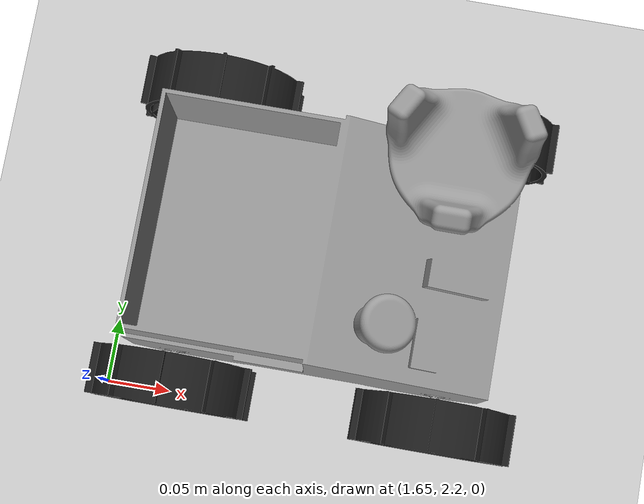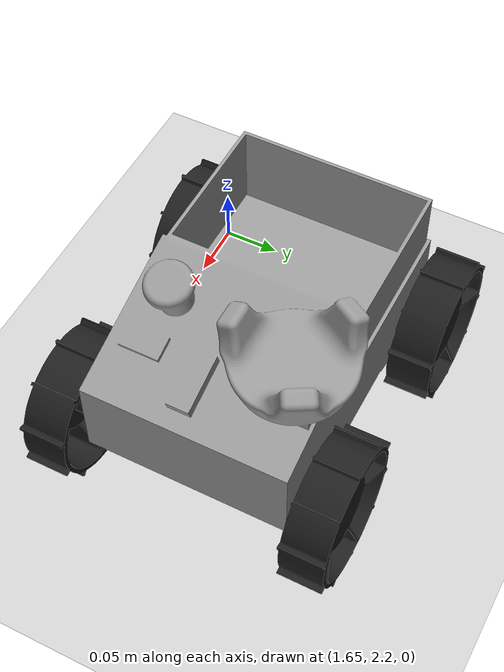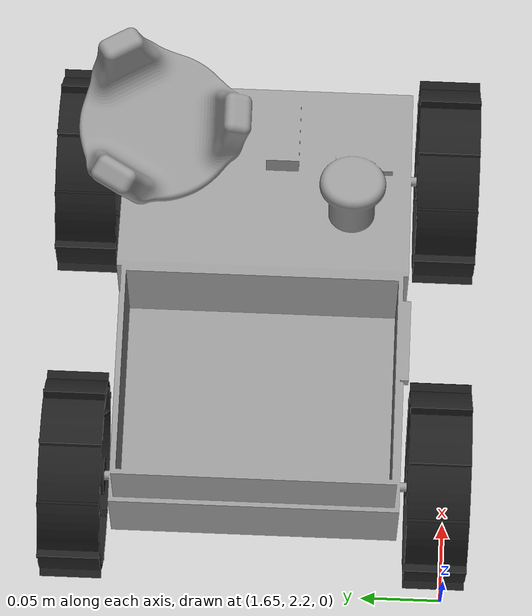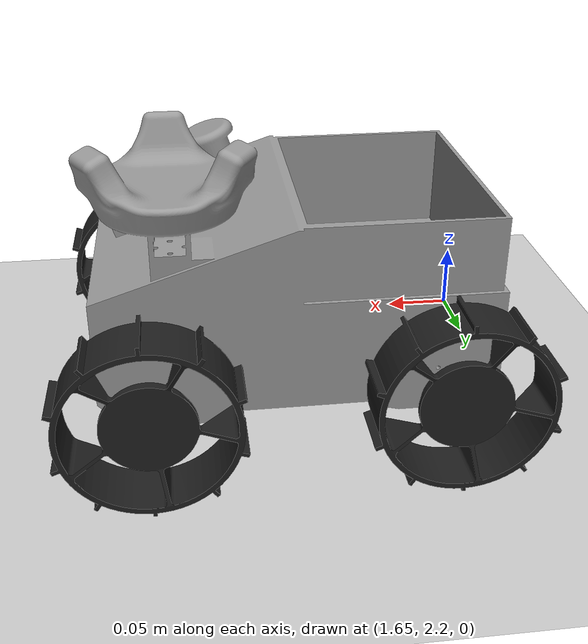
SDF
<sdf version="1.6">
 <world name="default">
  <model name="ground_plane">
   <static>1</static>
   <link name="link">
    <collision name="collision">
     <geometry><plane><normal>0 0 1</normal><size>100 100</size></plane></geometry>
     <surface><friction><ode><mu>100</mu><mu2>50</mu2></ode></friction></surface>
    </collision>
    <visual name="visual">
     <cast_shadows>0</cast_shadows>
     <geometry><plane><normal>0 0 1</normal><size>100 100</size></plane></geometry>
     <material>
      <script><uri>file://media/materials/scripts/gazebo.material</uri><name>Gazebo/Grey</name></script>
     </material>
    </visual>
   </link>
  </model>
  <model name="transporter_0">
   <link name="base_link">
    <pose>0 0.003 0.1576 0 -0 0</pose>
    <inertial>
     <mass>1</mass>
     <inertia>
      <ixx>0.166667</ixx>
      <ixy>0</ixy>
      <ixz>0</ixz>
      <iyy>0.166667</iyy>
      <iyz>0</iyz>
      <izz>0.166667</izz>
     </inertia>
    </inertial>
    <visual name="visual">
     <geometry>
      <mesh>
       <uri>/home/ssr/ros_kinetic/rmc_dev_ws/src/2018_robot/simulations/gazebo_rmc_sim/models/transporter/minibot_base_link.stl</uri>
       <scale>1 1 1</scale>
      </mesh>
     </geometry>
     <material>
      <lighting>1</lighting>
      <script><uri>file://media/materials/scripts/gazebo.material</uri><name>Gazebo/Grey</name></script>
      <ambient>0.3 0.3 0.3 1</ambient>
      <diffuse>0.7 0.7 0.7 1</diffuse>
      <specular>0.01 0.01 0.01 1</specular>
      <emissive>0 0 0 1</emissive>
      <shader type="vertex"><normal_map>__default__</normal_map></shader>
     </material>
    </visual>
    <collision name="collision_0">
     <geometry>
      <mesh>
       <uri>/home/ssr/ros_kinetic/rmc_dev_ws/src/2018_robot/simulations/gazebo_rmc_sim/models/transporter/minibot_frame_collision.stl</uri>
       <scale>1 1 1</scale>
      </mesh>
     </geometry>
     <surface>
      <friction>
       <ode><mu>1</mu><mu2>1</mu2><fdir1>0 0 0</fdir1><slip1>0</slip1><slip2>0</slip2></ode>
       <torsional>
        <coefficient>1</coefficient>
        <patch_radius>0</patch_radius>
        <surface_radius>0</surface_radius>
        <use_patch_radius>1</use_patch_radius>
        <ode><slip>0</slip></ode>
       </torsional>
      </friction>
      <bounce><restitution_coefficient>0</restitution_coefficient><threshold>1e+06</threshold></bounce>
      <contact>
       <collide_without_contact>0</collide_without_contact>
       <collide_without_contact_bitmask>1</collide_without_contact_bitmask>
       <collide_bitmask>1</collide_bitmask>
       <ode>
        <soft_cfm>0</soft_cfm>
        <soft_erp>0.2</soft_erp>
        <kp>1e+13</kp>
        <kd>1</kd>
        <max_vel>0.01</max_vel>
        <min_depth>0</min_depth>
       </ode>
       <bullet>
        <split_impulse>1</split_impulse>
        <split_impulse_penetration_threshold>-0.01</split_impulse_penetration_threshold>
        <soft_cfm>0</soft_cfm>
        <soft_erp>0.2</soft_erp>
        <kp>1e+13</kp>
        <kd>1</kd>
       </bullet>
      </contact>
     </surface>
    </collision>
   </link>
   <link name="back_left_wheel">
    <pose>-0.1 0.1205 0.085 0 0 -1.5708</pose>
    <inertial>
     <mass>1</mass>
     <inertia>
      <ixx>0.166667</ixx>
      <ixy>0</ixy>
      <ixz>0</ixz>
      <iyy>0.166667</iyy>
      <iyz>0</iyz>
      <izz>0.166667</izz>
     </inertia>
    </inertial>
    <visual name="visual">
     <geometry>
      <mesh>
       <uri>/home/ssr/ros_kinetic/rmc_dev_ws/src/2018_robot/simulations/gazebo_rmc_sim/models/transporter/minibot_wheel.stl</uri>
       <scale>1 1 1</scale>
      </mesh>
     </geometry>
     <material>
      <lighting>1</lighting>
      <script><uri>file://media/materials/scripts/gazebo.material</uri><name>Gazebo/Black</name></script>
      <ambient>0.3 0.3 0.3 1</ambient>
      <diffuse>0.7 0.7 0.7 1</diffuse>
      <specular>0.01 0.01 0.01 1</specular>
      <emissive>0 0 0 1</emissive>
      <shader type="vertex"><normal_map>__default__</normal_map></shader>
     </material>
    </visual>
    <collision name="collision_0">
     <pose>0.0085 0 0 3.14159 1.57079 3.14159</pose>
     <geometry><cylinder><radius>0.06</radius><length>0.037</length></cylinder></geometry>
     <surface>
      <friction>
       <ode><mu>1</mu><mu2>1</mu2><fdir1>0 0 0</fdir1><slip1>0</slip1><slip2>0</slip2></ode>
       <torsional>
        <coefficient>1</coefficient>
        <patch_radius>0</patch_radius>
        <surface_radius>0</surface_radius>
        <use_patch_radius>1</use_patch_radius>
        <ode><slip>0</slip></ode>
       </torsional>
      </friction>
      <bounce><restitution_coefficient>0</restitution_coefficient><threshold>1e+06</threshold></bounce>
      <contact>
       <collide_without_contact>0</collide_without_contact>
       <collide_without_contact_bitmask>1</collide_without_contact_bitmask>
       <collide_bitmask>1</collide_bitmask>
       <ode>
        <soft_cfm>0</soft_cfm>
        <soft_erp>0.2</soft_erp>
        <kp>1e+13</kp>
        <kd>1</kd>
        <max_vel>0.01</max_vel>
        <min_depth>0</min_depth>
       </ode>
       <bullet>
        <split_impulse>1</split_impulse>
        <split_impulse_penetration_threshold>-0.01</split_impulse_penetration_threshold>
        <soft_cfm>0</soft_cfm>
        <soft_erp>0.2</soft_erp>
        <kp>1e+13</kp>
        <kd>1</kd>
       </bullet>
      </contact>
     </surface>
    </collision>
   </link>
   <link name="front_left_wheel">
    <pose>0.1 0.1205 0.085 0 0 -1.5708</pose>
    <inertial>
     <mass>1</mass>
     <inertia>
      <ixx>0.166667</ixx>
      <ixy>0</ixy>
      <ixz>0</ixz>
      <iyy>0.166667</iyy>
      <iyz>0</iyz>
      <izz>0.166667</izz>
     </inertia>
    </inertial>
    <visual name="visual">
     <geometry>
      <mesh>
       <uri>/home/ssr/ros_kinetic/rmc_dev_ws/src/2018_robot/simulations/gazebo_rmc_sim/models/transporter/minibot_wheel.stl</uri>
       <scale>1 1 1</scale>
      </mesh>
     </geometry>
     <material>
      <lighting>1</lighting>
      <script><uri>file://media/materials/scripts/gazebo.material</uri><name>Gazebo/Black</name></script>
      <ambient>0.3 0.3 0.3 1</ambient>
      <diffuse>0.7 0.7 0.7 1</diffuse>
      <specular>0.01 0.01 0.01 1</specular>
      <emissive>0 0 0 1</emissive>
      <shader type="vertex"><normal_map>__default__</normal_map></shader>
     </material>
    </visual>
    <collision name="collision_0">
     <pose>0.0085 0 0 3.14159 1.57079 3.14159</pose>
     <geometry><cylinder><radius>0.06</radius><length>0.037</length></cylinder></geometry>
     <surface>
      <friction>
       <ode><mu>1</mu><mu2>1</mu2><fdir1>0 0 0</fdir1><slip1>0</slip1><slip2>0</slip2></ode>
       <torsional>
        <coefficient>1</coefficient>
        <patch_radius>0</patch_radius>
        <surface_radius>0</surface_radius>
        <use_patch_radius>1</use_patch_radius>
        <ode><slip>0</slip></ode>
       </torsional>
      </friction>
      <bounce><restitution_coefficient>0</restitution_coefficient><threshold>1e+06</threshold></bounce>
      <contact>
       <collide_without_contact>0</collide_without_contact>
       <collide_without_contact_bitmask>1</collide_without_contact_bitmask>
       <collide_bitmask>1</collide_bitmask>
       <ode>
        <soft_cfm>0</soft_cfm>
        <soft_erp>0.2</soft_erp>
        <kp>1e+13</kp>
        <kd>1</kd>
        <max_vel>0.01</max_vel>
        <min_depth>0</min_depth>
       </ode>
       <bullet>
        <split_impulse>1</split_impulse>
        <split_impulse_penetration_threshold>-0.01</split_impulse_penetration_threshold>
        <soft_cfm>0</soft_cfm>
        <soft_erp>0.2</soft_erp>
        <kp>1e+13</kp>
        <kd>1</kd>
       </bullet>
      </contact>
     </surface>
    </collision>
   </link>
   <link name="front_right_wheel">
    <pose>0.1 -0.122 0.085 0 -0 1.5708</pose>
    <inertial>
     <mass>1</mass>
     <inertia>
      <ixx>0.166667</ixx>
      <ixy>0</ixy>
      <ixz>0</ixz>
      <iyy>0.166667</iyy>
      <iyz>0</iyz>
      <izz>0.166667</izz>
     </inertia>
    </inertial>
    <visual name="visual">
     <geometry>
      <mesh>
       <uri>/home/ssr/ros_kinetic/rmc_dev_ws/src/2018_robot/simulations/gazebo_rmc_sim/models/transporter/minibot_wheel.stl</uri>
       <scale>1 1 1</scale>
      </mesh>
     </geometry>
     <material>
      <lighting>1</lighting>
      <script><uri>file://media/materials/scripts/gazebo.material</uri><name>Gazebo/Black</name></script>
      <ambient>0.3 0.3 0.3 1</ambient>
      <diffuse>0.7 0.7 0.7 1</diffuse>
      <specular>0.01 0.01 0.01 1</specular>
      <emissive>0 0 0 1</emissive>
      <shader type="vertex"><normal_map>__default__</normal_map></shader>
     </material>
    </visual>
    <collision name="collision_0">
     <pose>0.0085 0 0 3.14159 1.57079 3.14159</pose>
     <geometry><cylinder><radius>0.06</radius><length>0.037</length></cylinder></geometry>
     <surface>
      <friction>
       <ode><mu>1</mu><mu2>1</mu2><fdir1>0 0 0</fdir1><slip1>0</slip1><slip2>0</slip2></ode>
       <torsional>
        <coefficient>1</coefficient>
        <patch_radius>0</patch_radius>
        <surface_radius>0</surface_radius>
        <use_patch_radius>1</use_patch_radius>
        <ode><slip>0</slip></ode>
       </torsional>
      </friction>
      <bounce><restitution_coefficient>0</restitution_coefficient><threshold>1e+06</threshold></bounce>
      <contact>
       <collide_without_contact>0</collide_without_contact>
       <collide_without_contact_bitmask>1</collide_without_contact_bitmask>
       <collide_bitmask>1</collide_bitmask>
       <ode>
        <soft_cfm>0</soft_cfm>
        <soft_erp>0.2</soft_erp>
        <kp>1e+13</kp>
        <kd>1</kd>
        <max_vel>0.01</max_vel>
        <min_depth>0</min_depth>
       </ode>
       <bullet>
        <split_impulse>1</split_impulse>
        <split_impulse_penetration_threshold>-0.01</split_impulse_penetration_threshold>
        <soft_cfm>0</soft_cfm>
        <soft_erp>0.2</soft_erp>
        <kp>1e+13</kp>
        <kd>1</kd>
       </bullet>
      </contact>
     </surface>
    </collision>
   </link>
   <link name="back_right_wheel">
    <pose>-0.1 -0.122 0.085 0 -0 1.5708</pose>
    <inertial>
     <mass>1</mass>
     <inertia>
      <ixx>0.166667</ixx>
      <ixy>0</ixy>
      <ixz>0</ixz>
      <iyy>0.166667</iyy>
      <iyz>0</iyz>
      <izz>0.166667</izz>
     </inertia>
    </inertial>
    <visual name="visual">
     <geometry>
      <mesh>
       <uri>/home/ssr/ros_kinetic/rmc_dev_ws/src/2018_robot/simulations/gazebo_rmc_sim/models/transporter/minibot_wheel.stl</uri>
       <scale>1 1 1</scale>
      </mesh>
     </geometry>
     <material>
      <lighting>1</lighting>
      <script><uri>file://media/materials/scripts/gazebo.material</uri><name>Gazebo/Black</name></script>
      <ambient>0.3 0.3 0.3 1</ambient>
      <diffuse>0.7 0.7 0.7 1</diffuse>
      <specular>0.01 0.01 0.01 1</specular>
      <emissive>0 0 0 1</emissive>
      <shader type="vertex"><normal_map>__default__</normal_map></shader>
     </material>
    </visual>
    <collision name="collision_0">
     <pose>0.0085 0 0 3.14159 1.57079 3.14159</pose>
     <geometry><cylinder><radius>0.06</radius><length>0.037</length></cylinder></geometry>
     <surface>
      <friction>
       <ode><mu>1</mu><mu2>1</mu2><fdir1>0 0 0</fdir1><slip1>0</slip1><slip2>0</slip2></ode>
       <torsional>
        <coefficient>1</coefficient>
        <patch_radius>0</patch_radius>
        <surface_radius>0</surface_radius>
        <use_patch_radius>1</use_patch_radius>
        <ode><slip>0</slip></ode>
       </torsional>
      </friction>
      <bounce><restitution_coefficient>0</restitution_coefficient><threshold>1e+06</threshold></bounce>
      <contact>
       <collide_without_contact>0</collide_without_contact>
       <collide_without_contact_bitmask>1</collide_without_contact_bitmask>
       <collide_bitmask>1</collide_bitmask>
       <ode>
        <soft_cfm>0</soft_cfm>
        <soft_erp>0.2</soft_erp>
        <kp>1e+13</kp>
        <kd>1</kd>
        <max_vel>0.01</max_vel>
        <min_depth>0</min_depth>
       </ode>
       <bullet>
        <split_impulse>1</split_impulse>
        <split_impulse_penetration_threshold>-0.01</split_impulse_penetration_threshold>
        <soft_cfm>0</soft_cfm>
        <soft_erp>0.2</soft_erp>
        <kp>1e+13</kp>
        <kd>1</kd>
       </bullet>
      </contact>
     </surface>
    </collision>
   </link>
   <joint name="BL_Wheel" type="revolute">
    <parent>base_link</parent>
    <child>back_left_wheel</child>
    <axis>
     <xyz>1 0 0</xyz>
     <use_parent_model_frame>0</use_parent_model_frame>
     <limit>
      <lower>-1.79769e+308</lower>
      <upper>1.79769e+308</upper>
      <effort>-1</effort>
      <velocity>1</velocity>
     </limit>
     <dynamics>
      <spring_reference>0</spring_reference>
      <spring_stiffness>0</spring_stiffness>
      <damping>10</damping>
      <friction>1</friction>
     </dynamics>
    </axis>
    <physics>
     <ode><limit><cfm>0</cfm><erp>0.2</erp></limit><suspension><cfm>0</cfm><erp>0.2</erp></suspension></ode>
    </physics>
   </joint>
   <joint name="FL_Wheel" type="revolute">
    <parent>base_link</parent>
    <child>front_left_wheel</child>
    <axis>
     <xyz>1 0 0</xyz>
     <use_parent_model_frame>0</use_parent_model_frame>
     <limit>
      <lower>-1.79769e+308</lower>
      <upper>1.79769e+308</upper>
      <effort>-1</effort>
      <velocity>1</velocity>
     </limit>
     <dynamics>
      <spring_reference>0</spring_reference>
      <spring_stiffness>0</spring_stiffness>
      <damping>10</damping>
      <friction>1</friction>
     </dynamics>
    </axis>
    <physics>
     <ode><limit><cfm>0</cfm><erp>0.2</erp></limit><suspension><cfm>0</cfm><erp>0.2</erp></suspension></ode>
    </physics>
   </joint>
   <joint name="BR_Wheel" type="revolute">
    <parent>base_link</parent>
    <child>back_right_wheel</child>
    <axis>
     <xyz>1 0 0</xyz>
     <use_parent_model_frame>0</use_parent_model_frame>
     <limit>
      <lower>-1.79769e+308</lower>
      <upper>1.79769e+308</upper>
      <effort>-1</effort>
      <velocity>1</velocity>
     </limit>
     <dynamics>
      <spring_reference>0</spring_reference>
      <spring_stiffness>0</spring_stiffness>
      <damping>10</damping>
      <friction>1</friction>
     </dynamics>
    </axis>
    <physics>
     <ode><limit><cfm>0</cfm><erp>0.2</erp></limit><suspension><cfm>0</cfm><erp>0.2</erp></suspension></ode>
    </physics>
   </joint>
   <joint name="FR_Wheel" type="revolute">
    <parent>base_link</parent>
    <child>front_right_wheel</child>
    <axis>
     <xyz>1 0 0</xyz>
     <use_parent_model_frame>0</use_parent_model_frame>
     <limit>
      <lower>-1.79769e+308</lower>
      <upper>1.79769e+308</upper>
      <effort>-1</effort>
      <velocity>1</velocity>
     </limit>
     <dynamics>
      <spring_reference>0</spring_reference>
      <spring_stiffness>0</spring_stiffness>
      <damping>10</damping>
      <friction>1</friction>
     </dynamics>
    </axis>
    <physics>
     <ode><limit><cfm>0</cfm><erp>0.2</erp></limit><suspension><cfm>0</cfm><erp>0.2</erp></suspension></ode>
    </physics>
   </joint>
   <static>0</static>
   <pose>1.8074 2.319 -0.025008 -8e-06 -1e-06 -0.001156</pose>
  </model>
 </world>
</sdf>
